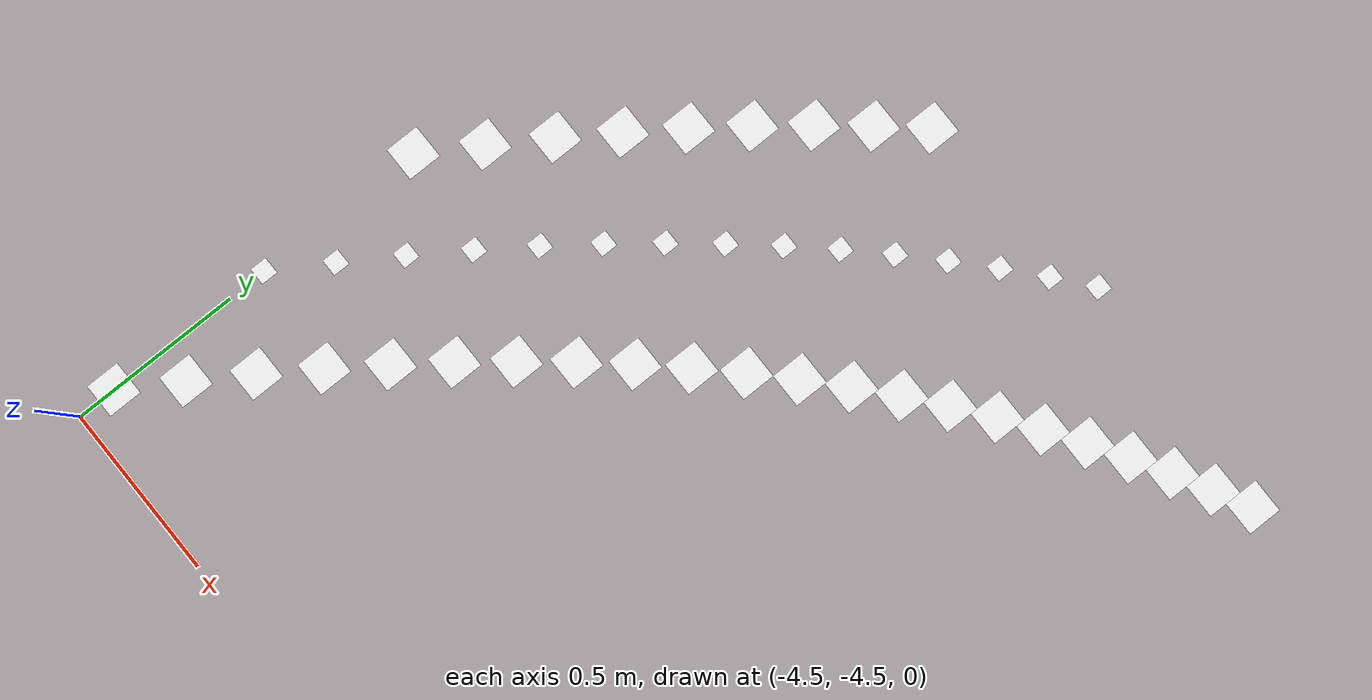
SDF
<sdf version="1.5">
 <model name="AutoNOMOS_mini_intersection">
  <static>true</static>
  <link name="L1_p1">
   <pose>-4.5 -3.884 0.011 0 0 0</pose>
   <visual name="visual_L1_p1">
    <cast_shadows>false</cast_shadows>
    <geometry><plane><normal>0 0 1</normal><size>.05 .05</size></plane></geometry>
    <material>
     <ambient>0 0 0 0</ambient>
     <diffuse>1 1 1 0</diffuse>
     <specular>0 0 0 0</specular>
     <emissive>0 0 0 0</emissive>
    </material>
   </visual>
  </link>
  <link name="L2_p1">
   <pose>-4.5 -3.384 0.011 0 0 0</pose>
   <visual name="visual_L2_p1">
    <cast_shadows>false</cast_shadows>
    <geometry><plane><normal>0 0 1</normal><size>.1 .1</size></plane></geometry>
    <material>
     <ambient>0 0 0 0</ambient>
     <diffuse>1 1 1 0</diffuse>
     <specular>0 0 0 0</specular>
     <emissive>0 0 0 0</emissive>
    </material>
   </visual>
  </link>
  <link name="L3_p1">
   <pose>-4.5 -4.384 0.011 0 0 0</pose>
   <visual name="visual_L3_p1">
    <cast_shadows>false</cast_shadows>
    <geometry><plane><normal>0 0 1</normal><size>.1 .1</size></plane></geometry>
    <material>
     <ambient>0 0 0 0</ambient>
     <diffuse>1 1 1 0</diffuse>
     <specular>0 0 0 0</specular>
     <emissive>0 0 0 0</emissive>
    </material>
   </visual>
  </link>
  <link name="L1_p2">
   <pose>-4.4 -3.722 0.011 0 0 0</pose>
   <visual name="visual_L1_p2">
    <cast_shadows>false</cast_shadows>
    <geometry><plane><normal>0 0 1</normal><size>.05 .05</size></plane></geometry>
    <material>
     <ambient>0 0 0 0</ambient>
     <diffuse>1 1 1 0</diffuse>
     <specular>0 0 0 0</specular>
     <emissive>0 0 0 0</emissive>
    </material>
   </visual>
  </link>
  <link name="L2_p2">
   <pose>-4.4 -3.222 0.011 0 0 0</pose>
   <visual name="visual_L2_p2">
    <cast_shadows>false</cast_shadows>
    <geometry><plane><normal>0 0 1</normal><size>.1 .1</size></plane></geometry>
    <material>
     <ambient>0 0 0 0</ambient>
     <diffuse>1 1 1 0</diffuse>
     <specular>0 0 0 0</specular>
     <emissive>0 0 0 0</emissive>
    </material>
   </visual>
  </link>
  <link name="L3_p2">
   <pose>-4.4 -4.222 0.011 0 0 0</pose>
   <visual name="visual_L3_p2">
    <cast_shadows>false</cast_shadows>
    <geometry><plane><normal>0 0 1</normal><size>.1 .1</size></plane></geometry>
    <material>
     <ambient>0 0 0 0</ambient>
     <diffuse>1 1 1 0</diffuse>
     <specular>0 0 0 0</specular>
     <emissive>0 0 0 0</emissive>
    </material>
   </visual>
  </link>
  <link name="L1_p3">
   <pose>-4.3 -3.566 0.011 0 0 0</pose>
   <visual name="visual_L1_p3">
    <cast_shadows>false</cast_shadows>
    <geometry><plane><normal>0 0 1</normal><size>.05 .05</size></plane></geometry>
    <material>
     <ambient>0 0 0 0</ambient>
     <diffuse>1 1 1 0</diffuse>
     <specular>0 0 0 0</specular>
     <emissive>0 0 0 0</emissive>
    </material>
   </visual>
  </link>
  <link name="L2_p3">
   <pose>-4.3 -3.066 0.011 0 0 0</pose>
   <visual name="visual_L2_p3">
    <cast_shadows>false</cast_shadows>
    <geometry><plane><normal>0 0 1</normal><size>.1 .1</size></plane></geometry>
    <material>
     <ambient>0 0 0 0</ambient>
     <diffuse>1 1 1 0</diffuse>
     <specular>0 0 0 0</specular>
     <emissive>0 0 0 0</emissive>
    </material>
   </visual>
  </link>
  <link name="L3_p3">
   <pose>-4.3 -4.066 0.011 0 0 0</pose>
   <visual name="visual_L3_p3">
    <cast_shadows>false</cast_shadows>
    <geometry><plane><normal>0 0 1</normal><size>.1 .1</size></plane></geometry>
    <material>
     <ambient>0 0 0 0</ambient>
     <diffuse>1 1 1 0</diffuse>
     <specular>0 0 0 0</specular>
     <emissive>0 0 0 0</emissive>
    </material>
   </visual>
  </link>
  <link name="L1_p4">
   <pose>-4.2 -3.418 0.011 0 0 0</pose>
   <visual name="visual_L1_p4">
    <cast_shadows>false</cast_shadows>
    <geometry><plane><normal>0 0 1</normal><size>.05 .05</size></plane></geometry>
    <material>
     <ambient>0 0 0 0</ambient>
     <diffuse>1 1 1 0</diffuse>
     <specular>0 0 0 0</specular>
     <emissive>0 0 0 0</emissive>
    </material>
   </visual>
  </link>
  <link name="L2_p4">
   <pose>-4.2 -2.918 0.011 0 0 0</pose>
   <visual name="visual_L2_p4">
    <cast_shadows>false</cast_shadows>
    <geometry><plane><normal>0 0 1</normal><size>.1 .1</size></plane></geometry>
    <material>
     <ambient>0 0 0 0</ambient>
     <diffuse>1 1 1 0</diffuse>
     <specular>0 0 0 0</specular>
     <emissive>0 0 0 0</emissive>
    </material>
   </visual>
  </link>
  <link name="L3_p4">
   <pose>-4.2 -3.918 0.011 0 0 0</pose>
   <visual name="visual_L3_p4">
    <cast_shadows>false</cast_shadows>
    <geometry><plane><normal>0 0 1</normal><size>.1 .1</size></plane></geometry>
    <material>
     <ambient>0 0 0 0</ambient>
     <diffuse>1 1 1 0</diffuse>
     <specular>0 0 0 0</specular>
     <emissive>0 0 0 0</emissive>
    </material>
   </visual>
  </link>
  <link name="L1_p5">
   <pose>-4.1 -3.276 0.011 0 0 0</pose>
   <visual name="visual_L1_p5">
    <cast_shadows>false</cast_shadows>
    <geometry><plane><normal>0 0 1</normal><size>.05 .05</size></plane></geometry>
    <material>
     <ambient>0 0 0 0</ambient>
     <diffuse>1 1 1 0</diffuse>
     <specular>0 0 0 0</specular>
     <emissive>0 0 0 0</emissive>
    </material>
   </visual>
  </link>
  <link name="L2_p5">
   <pose>-4.1 -2.776 0.011 0 0 0</pose>
   <visual name="visual_L2_p5">
    <cast_shadows>false</cast_shadows>
    <geometry><plane><normal>0 0 1</normal><size>.1 .1</size></plane></geometry>
    <material>
     <ambient>0 0 0 0</ambient>
     <diffuse>1 1 1 0</diffuse>
     <specular>0 0 0 0</specular>
     <emissive>0 0 0 0</emissive>
    </material>
   </visual>
  </link>
  <link name="L3_p5">
   <pose>-4.1 -3.776 0.011 0 0 0</pose>
   <visual name="visual_L3_p5">
    <cast_shadows>false</cast_shadows>
    <geometry><plane><normal>0 0 1</normal><size>.1 .1</size></plane></geometry>
    <material>
     <ambient>0 0 0 0</ambient>
     <diffuse>1 1 1 0</diffuse>
     <specular>0 0 0 0</specular>
     <emissive>0 0 0 0</emissive>
    </material>
   </visual>
  </link>
  <link name="L1_p6">
   <pose>-4 -3.141 0.011 0 0 0</pose>
   <visual name="visual_L1_p6">
    <cast_shadows>false</cast_shadows>
    <geometry><plane><normal>0 0 1</normal><size>.05 .05</size></plane></geometry>
    <material>
     <ambient>0 0 0 0</ambient>
     <diffuse>1 1 1 0</diffuse>
     <specular>0 0 0 0</specular>
     <emissive>0 0 0 0</emissive>
    </material>
   </visual>
  </link>
  <link name="L2_p6">
   <pose>-4 -2.641 0.011 0 0 0</pose>
   <visual name="visual_L2_p6">
    <cast_shadows>false</cast_shadows>
    <geometry><plane><normal>0 0 1</normal><size>.1 .1</size></plane></geometry>
    <material>
     <ambient>0 0 0 0</ambient>
     <diffuse>1 1 1 0</diffuse>
     <specular>0 0 0 0</specular>
     <emissive>0 0 0 0</emissive>
    </material>
   </visual>
  </link>
  <link name="L3_p6">
   <pose>-4 -3.641 0.011 0 0 0</pose>
   <visual name="visual_L3_p6">
    <cast_shadows>false</cast_shadows>
    <geometry><plane><normal>0 0 1</normal><size>.1 .1</size></plane></geometry>
    <material>
     <ambient>0 0 0 0</ambient>
     <diffuse>1 1 1 0</diffuse>
     <specular>0 0 0 0</specular>
     <emissive>0 0 0 0</emissive>
    </material>
   </visual>
  </link>
  <link name="L1_p7">
   <pose>-3.9 -3.013 0.011 0 0 0</pose>
   <visual name="visual_L1_p7">
    <cast_shadows>false</cast_shadows>
    <geometry><plane><normal>0 0 1</normal><size>.05 .05</size></plane></geometry>
    <material>
     <ambient>0 0 0 0</ambient>
     <diffuse>1 1 1 0</diffuse>
     <specular>0 0 0 0</specular>
     <emissive>0 0 0 0</emissive>
    </material>
   </visual>
  </link>
  <link name="L2_p7">
   <pose>-3.9 -2.513 0.011 0 0 0</pose>
   <visual name="visual_L2_p7">
    <cast_shadows>false</cast_shadows>
    <geometry><plane><normal>0 0 1</normal><size>.1 .1</size></plane></geometry>
    <material>
     <ambient>0 0 0 0</ambient>
     <diffuse>1 1 1 0</diffuse>
     <specular>0 0 0 0</specular>
     <emissive>0 0 0 0</emissive>
    </material>
   </visual>
  </link>
  <link name="L3_p7">
   <pose>-3.9 -3.513 0.011 0 0 0</pose>
   <visual name="visual_L3_p7">
    <cast_shadows>false</cast_shadows>
    <geometry><plane><normal>0 0 1</normal><size>.1 .1</size></plane></geometry>
    <material>
     <ambient>0 0 0 0</ambient>
     <diffuse>1 1 1 0</diffuse>
     <specular>0 0 0 0</specular>
     <emissive>0 0 0 0</emissive>
    </material>
   </visual>
  </link>
  <link name="L1_p8">
   <pose>-3.8 -2.891 0.011 0 0 0</pose>
   <visual name="visual_L1_p8">
    <cast_shadows>false</cast_shadows>
    <geometry><plane><normal>0 0 1</normal><size>.05 .05</size></plane></geometry>
    <material>
     <ambient>0 0 0 0</ambient>
     <diffuse>1 1 1 0</diffuse>
     <specular>0 0 0 0</specular>
     <emissive>0 0 0 0</emissive>
    </material>
   </visual>
  </link>
  <link name="L2_p8">
   <pose>-3.8 -2.391 0.011 0 0 0</pose>
   <visual name="visual_L2_p8">
    <cast_shadows>false</cast_shadows>
    <geometry><plane><normal>0 0 1</normal><size>.1 .1</size></plane></geometry>
    <material>
     <ambient>0 0 0 0</ambient>
     <diffuse>1 1 1 0</diffuse>
     <specular>0 0 0 0</specular>
     <emissive>0 0 0 0</emissive>
    </material>
   </visual>
  </link>
  <link name="L3_p8">
   <pose>-3.8 -3.391 0.011 0 0 0</pose>
   <visual name="visual_L3_p8">
    <cast_shadows>false</cast_shadows>
    <geometry><plane><normal>0 0 1</normal><size>.1 .1</size></plane></geometry>
    <material>
     <ambient>0 0 0 0</ambient>
     <diffuse>1 1 1 0</diffuse>
     <specular>0 0 0 0</specular>
     <emissive>0 0 0 0</emissive>
    </material>
   </visual>
  </link>
  <link name="L1_p9">
   <pose>-3.7 -2.774 0.011 0 0 0</pose>
   <visual name="visual_L1_p9">
    <cast_shadows>false</cast_shadows>
    <geometry><plane><normal>0 0 1</normal><size>.05 .05</size></plane></geometry>
    <material>
     <ambient>0 0 0 0</ambient>
     <diffuse>1 1 1 0</diffuse>
     <specular>0 0 0 0</specular>
     <emissive>0 0 0 0</emissive>
    </material>
   </visual>
  </link>
  <link name="L2_p9">
   <pose>-3.7 -2.274 0.011 0 0 0</pose>
   <visual name="visual_L2_p9">
    <cast_shadows>false</cast_shadows>
    <geometry><plane><normal>0 0 1</normal><size>.1 .1</size></plane></geometry>
    <material>
     <ambient>0 0 0 0</ambient>
     <diffuse>1 1 1 0</diffuse>
     <specular>0 0 0 0</specular>
     <emissive>0 0 0 0</emissive>
    </material>
   </visual>
  </link>
  <link name="L3_p9">
   <pose>-3.7 -3.274 0.011 0 0 0</pose>
   <visual name="visual_L3_p9">
    <cast_shadows>false</cast_shadows>
    <geometry><plane><normal>0 0 1</normal><size>.1 .1</size></plane></geometry>
    <material>
     <ambient>0 0 0 0</ambient>
     <diffuse>1 1 1 0</diffuse>
     <specular>0 0 0 0</specular>
     <emissive>0 0 0 0</emissive>
    </material>
   </visual>
  </link>
  <link name="L1_p10">
   <pose>-3.6 -2.664 0.011 0 0 0</pose>
   <visual name="visual_L1_p10">
    <cast_shadows>false</cast_shadows>
    <geometry><plane><normal>0 0 1</normal><size>.05 .05</size></plane></geometry>
    <material>
     <ambient>0 0 0 0</ambient>
     <diffuse>1 1 1 0</diffuse>
     <specular>0 0 0 0</specular>
     <emissive>0 0 0 0</emissive>
    </material>
   </visual>
  </link>
  <link name="L3_p10">
   <pose>-3.6 -3.164 0.011 0 0 0</pose>
   <visual name="visual_L3_p10">
    <cast_shadows>false</cast_shadows>
    <geometry><plane><normal>0 0 1</normal><size>.1 .1</size></plane></geometry>
    <material>
     <ambient>0 0 0 0</ambient>
     <diffuse>1 1 1 0</diffuse>
     <specular>0 0 0 0</specular>
     <emissive>0 0 0 0</emissive>
    </material>
   </visual>
  </link>
  <link name="L1_p11">
   <pose>-3.5 -2.56 0.011 0 0 0</pose>
   <visual name="visual_L1_p11">
    <cast_shadows>false</cast_shadows>
    <geometry><plane><normal>0 0 1</normal><size>.05 .05</size></plane></geometry>
    <material>
     <ambient>0 0 0 0</ambient>
     <diffuse>1 1 1 0</diffuse>
     <specular>0 0 0 0</specular>
     <emissive>0 0 0 0</emissive>
    </material>
   </visual>
  </link>
  <link name="L3_p11">
   <pose>-3.5 -3.06 0.011 0 0 0</pose>
   <visual name="visual_L3_p11">
    <cast_shadows>false</cast_shadows>
    <geometry><plane><normal>0 0 1</normal><size>.1 .1</size></plane></geometry>
    <material>
     <ambient>0 0 0 0</ambient>
     <diffuse>1 1 1 0</diffuse>
     <specular>0 0 0 0</specular>
     <emissive>0 0 0 0</emissive>
    </material>
   </visual>
  </link>
  <link name="L1_p12">
   <pose>-3.4 -2.461 0.011 0 0 0</pose>
   <visual name="visual_L1_p12">
    <cast_shadows>false</cast_shadows>
    <geometry><plane><normal>0 0 1</normal><size>.05 .05</size></plane></geometry>
    <material>
     <ambient>0 0 0 0</ambient>
     <diffuse>1 1 1 0</diffuse>
     <specular>0 0 0 0</specular>
     <emissive>0 0 0 0</emissive>
    </material>
   </visual>
  </link>
  <link name="L3_p12">
   <pose>-3.4 -2.961 0.011 0 0 0</pose>
   <visual name="visual_L3_p12">
    <cast_shadows>false</cast_shadows>
    <geometry><plane><normal>0 0 1</normal><size>.1 .1</size></plane></geometry>
    <material>
     <ambient>0 0 0 0</ambient>
     <diffuse>1 1 1 0</diffuse>
     <specular>0 0 0 0</specular>
     <emissive>0 0 0 0</emissive>
    </material>
   </visual>
  </link>
  <link name="L1_p13">
   <pose>-3.3 -2.367 0.011 0 0 0</pose>
   <visual name="visual_L1_p13">
    <cast_shadows>false</cast_shadows>
    <geometry><plane><normal>0 0 1</normal><size>.05 .05</size></plane></geometry>
    <material>
     <ambient>0 0 0 0</ambient>
     <diffuse>1 1 1 0</diffuse>
     <specular>0 0 0 0</specular>
     <emissive>0 0 0 0</emissive>
    </material>
   </visual>
  </link>
  <link name="L3_p13">
   <pose>-3.3 -2.867 0.011 0 0 0</pose>
   <visual name="visual_L3_p13">
    <cast_shadows>false</cast_shadows>
    <geometry><plane><normal>0 0 1</normal><size>.1 .1</size></plane></geometry>
    <material>
     <ambient>0 0 0 0</ambient>
     <diffuse>1 1 1 0</diffuse>
     <specular>0 0 0 0</specular>
     <emissive>0 0 0 0</emissive>
    </material>
   </visual>
  </link>
  <link name="L1_p14">
   <pose>-3.2 -2.279 0.011 0 0 0</pose>
   <visual name="visual_L1_p14">
    <cast_shadows>false</cast_shadows>
    <geometry><plane><normal>0 0 1</normal><size>.05 .05</size></plane></geometry>
    <material>
     <ambient>0 0 0 0</ambient>
     <diffuse>1 1 1 0</diffuse>
     <specular>0 0 0 0</specular>
     <emissive>0 0 0 0</emissive>
    </material>
   </visual>
  </link>
  <link name="L3_p14">
   <pose>-3.2 -2.779 0.011 0 0 0</pose>
   <visual name="visual_L3_p14">
    <cast_shadows>false</cast_shadows>
    <geometry><plane><normal>0 0 1</normal><size>.1 .1</size></plane></geometry>
    <material>
     <ambient>0 0 0 0</ambient>
     <diffuse>1 1 1 0</diffuse>
     <specular>0 0 0 0</specular>
     <emissive>0 0 0 0</emissive>
    </material>
   </visual>
  </link>
  <link name="L1_p15">
   <pose>-3.1 -2.196 0.011 0 0 0</pose>
   <visual name="visual_L1_p15">
    <cast_shadows>false</cast_shadows>
    <geometry><plane><normal>0 0 1</normal><size>.05 .05</size></plane></geometry>
    <material>
     <ambient>0 0 0 0</ambient>
     <diffuse>1 1 1 0</diffuse>
     <specular>0 0 0 0</specular>
     <emissive>0 0 0 0</emissive>
    </material>
   </visual>
  </link>
  <link name="L3_p15">
   <pose>-3.1 -2.696 0.011 0 0 0</pose>
   <visual name="visual_L3_p15">
    <cast_shadows>false</cast_shadows>
    <geometry><plane><normal>0 0 1</normal><size>.1 .1</size></plane></geometry>
    <material>
     <ambient>0 0 0 0</ambient>
     <diffuse>1 1 1 0</diffuse>
     <specular>0 0 0 0</specular>
     <emissive>0 0 0 0</emissive>
    </material>
   </visual>
  </link>
  <link name="L3_p16">
   <pose>-3 -2.618 0.011 0 0 0</pose>
   <visual name="visual_L3_p16">
    <cast_shadows>false</cast_shadows>
    <geometry><plane><normal>0 0 1</normal><size>.1 .1</size></plane></geometry>
    <material>
     <ambient>0 0 0 0</ambient>
     <diffuse>1 1 1 0</diffuse>
     <specular>0 0 0 0</specular>
     <emissive>0 0 0 0</emissive>
    </material>
   </visual>
  </link>
  <link name="L3_p17">
   <pose>-2.9 -2.545 0.011 0 0 0</pose>
   <visual name="visual_L3_p17">
    <cast_shadows>false</cast_shadows>
    <geometry><plane><normal>0 0 1</normal><size>.1 .1</size></plane></geometry>
    <material>
     <ambient>0 0 0 0</ambient>
     <diffuse>1 1 1 0</diffuse>
     <specular>0 0 0 0</specular>
     <emissive>0 0 0 0</emissive>
    </material>
   </visual>
  </link>
  <link name="L3_p18">
   <pose>-2.8 -2.476 0.011 0 0 0</pose>
   <visual name="visual_L3_p18">
    <cast_shadows>false</cast_shadows>
    <geometry><plane><normal>0 0 1</normal><size>.1 .1</size></plane></geometry>
    <material>
     <ambient>0 0 0 0</ambient>
     <diffuse>1 1 1 0</diffuse>
     <specular>0 0 0 0</specular>
     <emissive>0 0 0 0</emissive>
    </material>
   </visual>
  </link>
  <link name="L3_p19">
   <pose>-2.7 -2.412 0.011 0 0 0</pose>
   <visual name="visual_L3_p19">
    <cast_shadows>false</cast_shadows>
    <geometry><plane><normal>0 0 1</normal><size>.1 .1</size></plane></geometry>
    <material>
     <ambient>0 0 0 0</ambient>
     <diffuse>1 1 1 0</diffuse>
     <specular>0 0 0 0</specular>
     <emissive>0 0 0 0</emissive>
    </material>
   </visual>
  </link>
  <link name="L3_p20">
   <pose>-2.6 -2.352 0.011 0 0 0</pose>
   <visual name="visual_L3_p20">
    <cast_shadows>false</cast_shadows>
    <geometry><plane><normal>0 0 1</normal><size>.1 .1</size></plane></geometry>
    <material>
     <ambient>0 0 0 0</ambient>
     <diffuse>1 1 1 0</diffuse>
     <specular>0 0 0 0</specular>
     <emissive>0 0 0 0</emissive>
    </material>
   </visual>
  </link>
  <link name="L3_p21">
   <pose>-2.5 -2.296 0.011 0 0 0</pose>
   <visual name="visual_L3_p21">
    <cast_shadows>false</cast_shadows>
    <geometry><plane><normal>0 0 1</normal><size>.1 .1</size></plane></geometry>
    <material>
     <ambient>0 0 0 0</ambient>
     <diffuse>1 1 1 0</diffuse>
     <specular>0 0 0 0</specular>
     <emissive>0 0 0 0</emissive>
    </material>
   </visual>
  </link>
  <link name="L3_p22">
   <pose>-2.4 -2.244 0.011 0 0 0</pose>
   <visual name="visual_L3_p22">
    <cast_shadows>false</cast_shadows>
    <geometry><plane><normal>0 0 1</normal><size>.1 .1</size></plane></geometry>
    <material>
     <ambient>0 0 0 0</ambient>
     <diffuse>1 1 1 0</diffuse>
     <specular>0 0 0 0</specular>
     <emissive>0 0 0 0</emissive>
    </material>
   </visual>
  </link>
 </model>
</sdf>
